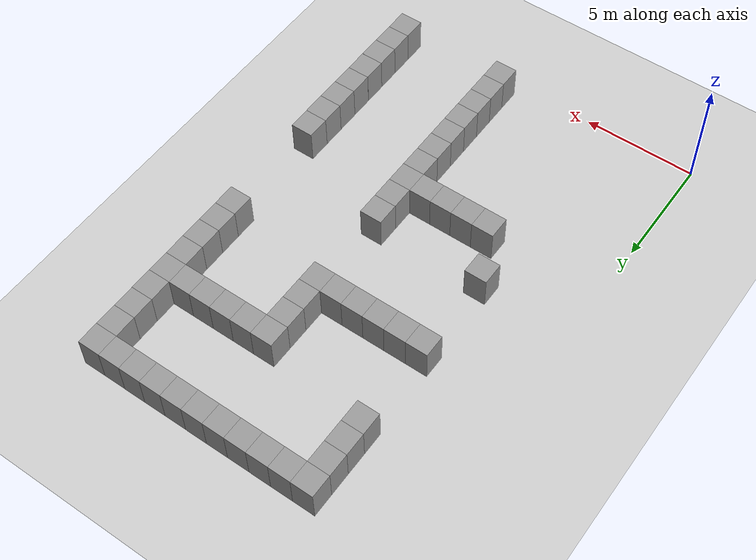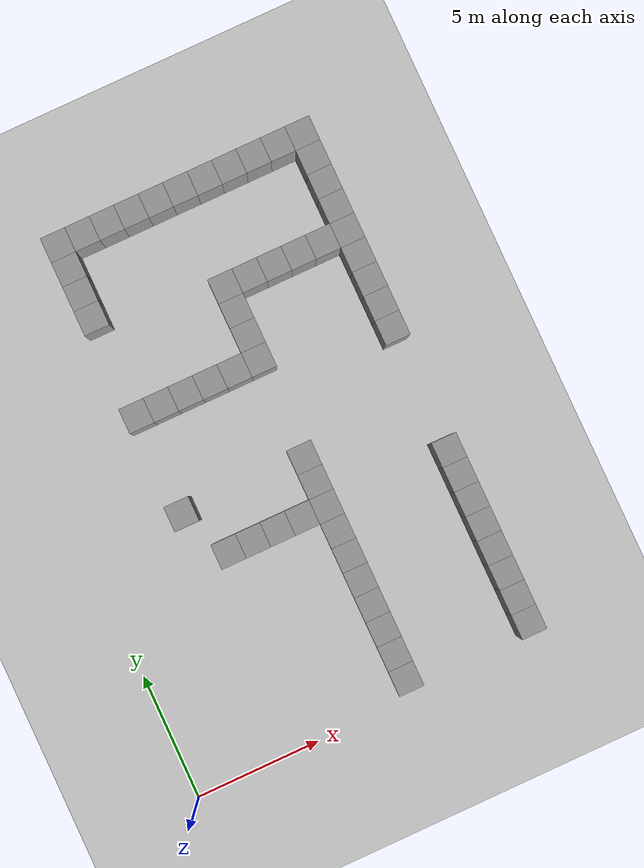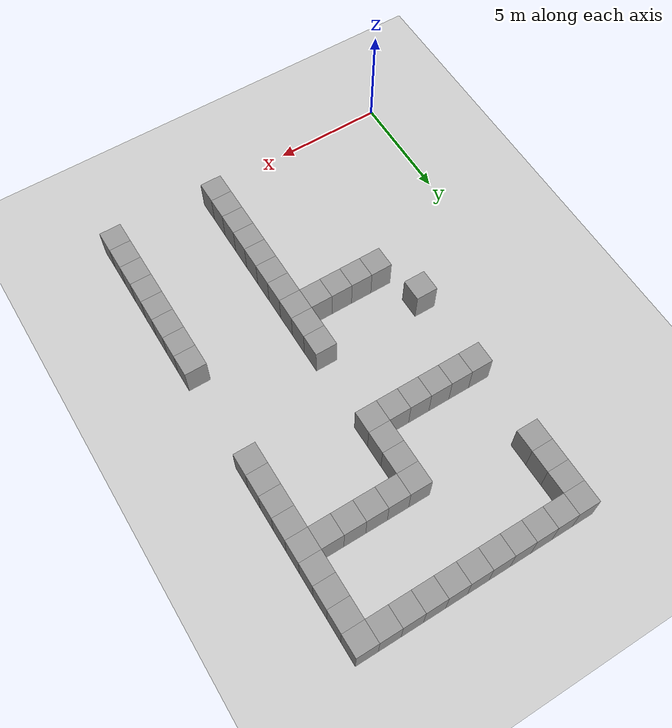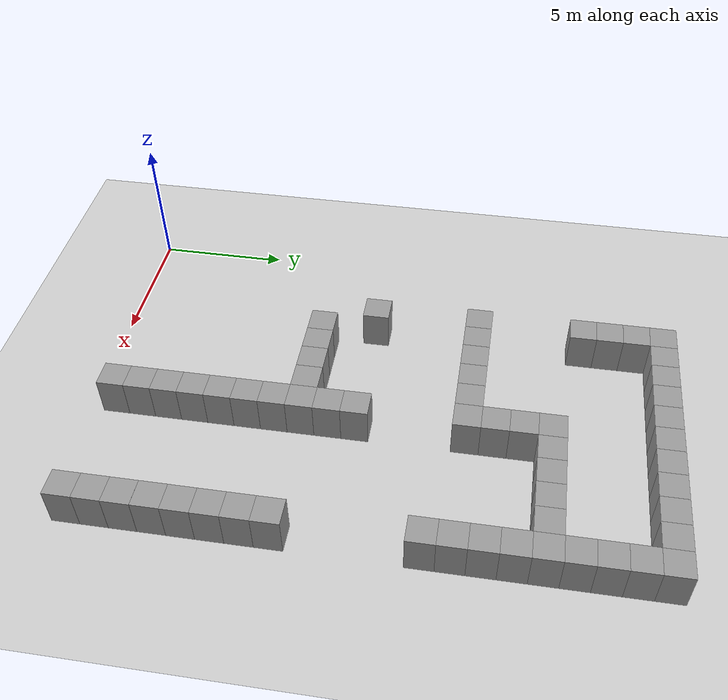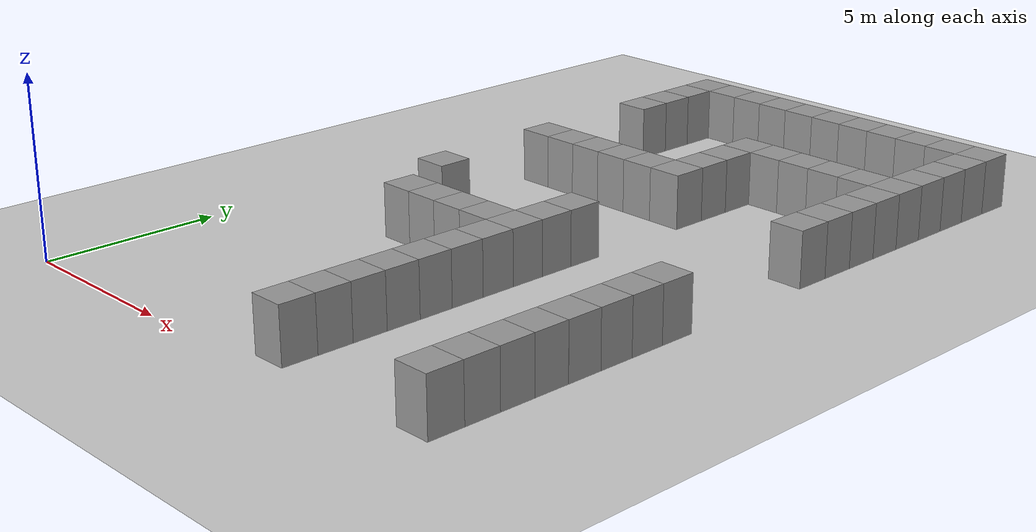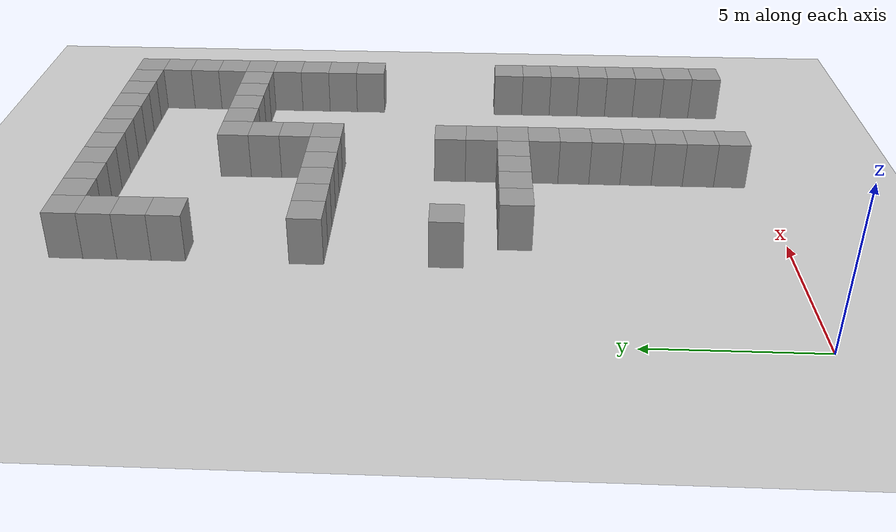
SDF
<sdf version="1.4">
 <world name="default">
  <model name="ground_plane">
   <static>1</static>
   <link name="link">
    <collision name="collision">
     <geometry><plane><normal>0 0 1</normal><size>100 100</size></plane></geometry>
     <surface><friction><ode><mu>100</mu><mu2>50</mu2></ode></friction></surface>
    </collision>
    <visual name="visual">
     <cast_shadows>0</cast_shadows>
     <geometry><plane><normal>0 0 1</normal><size>100 100</size></plane></geometry>
     <material>
      <script><uri>file://media/materials/scripts/gazebo.material</uri><name>Gazebo/Grey</name></script>
     </material>
    </visual>
    <velocity_decay><linear>0</linear><angular>0</angular></velocity_decay>
   </link>
  </model>
  <model name="unit_box_29">
   <pose>8.99995 0.999993 0.5 0 0 -1.1e-05</pose>
   <static>1</static>
   <link name="link">
    <inertial>
     <mass>1</mass>
     <inertia><ixx>1</ixx><ixy>0</ixy><ixz>0</ixz><iyy>1</iyy><iyz>0</iyz><izz>1</izz></inertia>
    </inertial>
    <collision name="collision"><geometry><box><size>1 1 2</size></box></geometry></collision>
    <visual name="visual">
     <geometry><box><size>1 1 2</size></box></geometry>
     <material>
      <script><uri>file://media/materials/scripts/gazebo.material</uri><name>Gazebo/Grey</name></script>
     </material>
    </visual>
    <velocity_decay><linear>0</linear><angular>0</angular></velocity_decay>
   </link>
   <static>0</static>
  </model>
  <model name="unit_box_30">
   <pose>8.99995 1.99999 0.5 0 0 -7e-06</pose>
   <static>1</static>
   <link name="link">
    <inertial>
     <mass>1</mass>
     <inertia><ixx>1</ixx><ixy>0</ixy><ixz>0</ixz><iyy>1</iyy><iyz>0</iyz><izz>1</izz></inertia>
    </inertial>
    <collision name="collision"><geometry><box><size>1 1 2</size></box></geometry></collision>
    <visual name="visual">
     <geometry><box><size>1 1 2</size></box></geometry>
     <material>
      <script><uri>file://media/materials/scripts/gazebo.material</uri><name>Gazebo/Grey</name></script>
     </material>
    </visual>
    <velocity_decay><linear>0</linear><angular>0</angular></velocity_decay>
   </link>
   <static>0</static>
  </model>
  <model name="unit_box_31">
   <pose>8.99997 3 0.5 0 0 -6e-06</pose>
   <static>1</static>
   <link name="link">
    <inertial>
     <mass>1</mass>
     <inertia><ixx>1</ixx><ixy>0</ixy><ixz>0</ixz><iyy>1</iyy><iyz>0</iyz><izz>1</izz></inertia>
    </inertial>
    <collision name="collision"><geometry><box><size>1 1 2</size></box></geometry></collision>
    <visual name="visual">
     <geometry><box><size>1 1 2</size></box></geometry>
     <material>
      <script><uri>file://media/materials/scripts/gazebo.material</uri><name>Gazebo/Grey</name></script>
     </material>
    </visual>
    <velocity_decay><linear>0</linear><angular>0</angular></velocity_decay>
   </link>
   <static>0</static>
  </model>
  <model name="unit_box_32">
   <pose>8.99997 4 0.5 0 0 -8e-06</pose>
   <static>1</static>
   <link name="link">
    <inertial>
     <mass>1</mass>
     <inertia><ixx>1</ixx><ixy>0</ixy><ixz>0</ixz><iyy>1</iyy><iyz>0</iyz><izz>1</izz></inertia>
    </inertial>
    <collision name="collision"><geometry><box><size>1 1 2</size></box></geometry></collision>
    <visual name="visual">
     <geometry><box><size>1 1 2</size></box></geometry>
     <material>
      <script><uri>file://media/materials/scripts/gazebo.material</uri><name>Gazebo/Grey</name></script>
     </material>
    </visual>
    <velocity_decay><linear>0</linear><angular>0</angular></velocity_decay>
   </link>
   <static>0</static>
  </model>
  <model name="unit_box_33">
   <pose>9 5 0.5 0 0 -7e-06</pose>
   <static>1</static>
   <link name="link">
    <inertial>
     <mass>1</mass>
     <inertia><ixx>1</ixx><ixy>0</ixy><ixz>0</ixz><iyy>1</iyy><iyz>0</iyz><izz>1</izz></inertia>
    </inertial>
    <collision name="collision"><geometry><box><size>1 1 2</size></box></geometry></collision>
    <visual name="visual">
     <geometry><box><size>1 1 2</size></box></geometry>
     <material>
      <script><uri>file://media/materials/scripts/gazebo.material</uri><name>Gazebo/Grey</name></script>
     </material>
    </visual>
    <velocity_decay><linear>0</linear><angular>0</angular></velocity_decay>
   </link>
   <static>0</static>
  </model>
  <model name="unit_box_34">
   <pose>9 6 0.5 0 0 -6e-06</pose>
   <static>1</static>
   <link name="link">
    <inertial>
     <mass>1</mass>
     <inertia><ixx>1</ixx><ixy>0</ixy><ixz>0</ixz><iyy>1</iyy><iyz>0</iyz><izz>1</izz></inertia>
    </inertial>
    <collision name="collision"><geometry><box><size>1 1 2</size></box></geometry></collision>
    <visual name="visual">
     <geometry><box><size>1 1 2</size></box></geometry>
     <material>
      <script><uri>file://media/materials/scripts/gazebo.material</uri><name>Gazebo/Grey</name></script>
     </material>
    </visual>
    <velocity_decay><linear>0</linear><angular>0</angular></velocity_decay>
   </link>
   <static>0</static>
  </model>
  <model name="unit_box_38">
   <pose>9.00001 7 0.5 0 0 -3e-06</pose>
   <static>1</static>
   <link name="link">
    <inertial>
     <mass>1</mass>
     <inertia><ixx>1</ixx><ixy>0</ixy><ixz>0</ixz><iyy>1</iyy><iyz>0</iyz><izz>1</izz></inertia>
    </inertial>
    <collision name="collision"><geometry><box><size>1 1 2</size></box></geometry></collision>
    <visual name="visual">
     <geometry><box><size>1 1 2</size></box></geometry>
     <material>
      <script><uri>file://media/materials/scripts/gazebo.material</uri><name>Gazebo/Grey</name></script>
     </material>
    </visual>
    <velocity_decay><linear>0</linear><angular>0</angular></velocity_decay>
   </link>
   <static>0</static>
  </model>
  <model name="unit_box_39">
   <pose>9 8.00001 0.5 0 0 -1e-06</pose>
   <static>1</static>
   <link name="link">
    <inertial>
     <mass>1</mass>
     <inertia><ixx>1</ixx><ixy>0</ixy><ixz>0</ixz><iyy>1</iyy><iyz>0</iyz><izz>1</izz></inertia>
    </inertial>
    <collision name="collision"><geometry><box><size>1 1 2</size></box></geometry></collision>
    <visual name="visual">
     <geometry><box><size>1 1 2</size></box></geometry>
     <material>
      <script><uri>file://media/materials/scripts/gazebo.material</uri><name>Gazebo/Grey</name></script>
     </material>
    </visual>
    <velocity_decay><linear>0</linear><angular>0</angular></velocity_decay>
   </link>
   <static>0</static>
  </model>
  <model name="unit_box_51">
   <pose>8 7.99999 0.5 0 -0 2e-06</pose>
   <static>1</static>
   <link name="link">
    <inertial>
     <mass>1</mass>
     <inertia><ixx>1</ixx><ixy>0</ixy><ixz>0</ixz><iyy>1</iyy><iyz>0</iyz><izz>1</izz></inertia>
    </inertial>
    <collision name="collision"><geometry><box><size>1 1 2</size></box></geometry></collision>
    <visual name="visual">
     <geometry><box><size>1 1 2</size></box></geometry>
     <material>
      <script><uri>file://media/materials/scripts/gazebo.material</uri><name>Gazebo/Grey</name></script>
     </material>
    </visual>
    <velocity_decay><linear>0</linear><angular>0</angular></velocity_decay>
   </link>
   <static>0</static>
  </model>
  <model name="unit_box_52">
   <pose>7 8.00001 0.5 0 -0 1e-06</pose>
   <static>1</static>
   <link name="link">
    <inertial>
     <mass>1</mass>
     <inertia><ixx>1</ixx><ixy>0</ixy><ixz>0</ixz><iyy>1</iyy><iyz>0</iyz><izz>1</izz></inertia>
    </inertial>
    <collision name="collision"><geometry><box><size>1 1 2</size></box></geometry></collision>
    <visual name="visual">
     <geometry><box><size>1 1 2</size></box></geometry>
     <material>
      <script><uri>file://media/materials/scripts/gazebo.material</uri><name>Gazebo/Grey</name></script>
     </material>
    </visual>
    <velocity_decay><linear>0</linear><angular>0</angular></velocity_decay>
   </link>
   <static>0</static>
  </model>
  <model name="unit_box_53">
   <pose>6 8 0.5 0 0 -3e-06</pose>
   <static>1</static>
   <link name="link">
    <inertial>
     <mass>1</mass>
     <inertia><ixx>1</ixx><ixy>0</ixy><ixz>0</ixz><iyy>1</iyy><iyz>0</iyz><izz>1</izz></inertia>
    </inertial>
    <collision name="collision"><geometry><box><size>1 1 2</size></box></geometry></collision>
    <visual name="visual">
     <geometry><box><size>1 1 2</size></box></geometry>
     <material>
      <script><uri>file://media/materials/scripts/gazebo.material</uri><name>Gazebo/Grey</name></script>
     </material>
    </visual>
    <velocity_decay><linear>0</linear><angular>0</angular></velocity_decay>
   </link>
   <static>0</static>
  </model>
  <model name="unit_box_54">
   <pose>5 8 0.5 0 0 -1e-06</pose>
   <static>1</static>
   <link name="link">
    <inertial>
     <mass>1</mass>
     <inertia><ixx>1</ixx><ixy>0</ixy><ixz>0</ixz><iyy>1</iyy><iyz>0</iyz><izz>1</izz></inertia>
    </inertial>
    <collision name="collision"><geometry><box><size>1 1 2</size></box></geometry></collision>
    <visual name="visual">
     <geometry><box><size>1 1 2</size></box></geometry>
     <material>
      <script><uri>file://media/materials/scripts/gazebo.material</uri><name>Gazebo/Grey</name></script>
     </material>
    </visual>
    <velocity_decay><linear>0</linear><angular>0</angular></velocity_decay>
   </link>
   <static>0</static>
  </model>
  <model name="unit_box_55">
   <pose>9 9.00001 0.5 0 0 -1e-06</pose>
   <static>1</static>
   <link name="link">
    <inertial>
     <mass>1</mass>
     <inertia><ixx>1</ixx><ixy>0</ixy><ixz>0</ixz><iyy>1</iyy><iyz>0</iyz><izz>1</izz></inertia>
    </inertial>
    <collision name="collision"><geometry><box><size>1 1 2</size></box></geometry></collision>
    <visual name="visual">
     <geometry><box><size>1 1 2</size></box></geometry>
     <material>
      <script><uri>file://media/materials/scripts/gazebo.material</uri><name>Gazebo/Grey</name></script>
     </material>
    </visual>
    <velocity_decay><linear>0</linear><angular>0</angular></velocity_decay>
   </link>
   <static>0</static>
  </model>
  <model name="unit_box_56">
   <pose>9 10 0.5 0 0 -2e-06</pose>
   <static>1</static>
   <link name="link">
    <inertial>
     <mass>1</mass>
     <inertia><ixx>1</ixx><ixy>0</ixy><ixz>0</ixz><iyy>1</iyy><iyz>0</iyz><izz>1</izz></inertia>
    </inertial>
    <collision name="collision"><geometry><box><size>1 1 2</size></box></geometry></collision>
    <visual name="visual">
     <geometry><box><size>1 1 2</size></box></geometry>
     <material>
      <script><uri>file://media/materials/scripts/gazebo.material</uri><name>Gazebo/Grey</name></script>
     </material>
    </visual>
    <velocity_decay><linear>0</linear><angular>0</angular></velocity_decay>
   </link>
   <static>0</static>
  </model>
  <model name="unit_box_65">
   <pose>4 14 0.5 0 -0 0</pose>
   <static>1</static>
   <link name="link">
    <inertial>
     <mass>1</mass>
     <inertia><ixx>1</ixx><ixy>0</ixy><ixz>0</ixz><iyy>1</iyy><iyz>0</iyz><izz>1</izz></inertia>
    </inertial>
    <collision name="collision"><geometry><box><size>1 1 2</size></box></geometry></collision>
    <visual name="visual">
     <geometry><box><size>1 1 2</size></box></geometry>
     <material>
      <script><uri>file://media/materials/scripts/gazebo.material</uri><name>Gazebo/Grey</name></script>
     </material>
    </visual>
    <velocity_decay><linear>0</linear><angular>0</angular></velocity_decay>
   </link>
   <static>0</static>
  </model>
  <model name="unit_box_66">
   <pose>5 14 0.5 0 -0 0</pose>
   <static>1</static>
   <link name="link">
    <inertial>
     <mass>1</mass>
     <inertia><ixx>1</ixx><ixy>0</ixy><ixz>0</ixz><iyy>1</iyy><iyz>0</iyz><izz>1</izz></inertia>
    </inertial>
    <collision name="collision"><geometry><box><size>1 1 2</size></box></geometry></collision>
    <visual name="visual">
     <geometry><box><size>1 1 2</size></box></geometry>
     <material>
      <script><uri>file://media/materials/scripts/gazebo.material</uri><name>Gazebo/Grey</name></script>
     </material>
    </visual>
    <velocity_decay><linear>0</linear><angular>0</angular></velocity_decay>
   </link>
   <static>0</static>
  </model>
  <model name="unit_box_86">
   <pose>6 14 0.5 0 -0 1e-06</pose>
   <static>1</static>
   <link name="link">
    <inertial>
     <mass>1</mass>
     <inertia><ixx>1</ixx><ixy>0</ixy><ixz>0</ixz><iyy>1</iyy><iyz>0</iyz><izz>1</izz></inertia>
    </inertial>
    <collision name="collision"><geometry><box><size>1 1 2</size></box></geometry></collision>
    <visual name="visual">
     <geometry><box><size>1 1 2</size></box></geometry>
     <material>
      <script><uri>file://media/materials/scripts/gazebo.material</uri><name>Gazebo/Grey</name></script>
     </material>
    </visual>
    <velocity_decay><linear>0</linear><angular>0</angular></velocity_decay>
   </link>
   <static>0</static>
  </model>
  <model name="unit_box_87">
   <pose>7 14 0.5 0 -0 1e-06</pose>
   <static>1</static>
   <link name="link">
    <inertial>
     <mass>1</mass>
     <inertia><ixx>1</ixx><ixy>0</ixy><ixz>0</ixz><iyy>1</iyy><iyz>0</iyz><izz>1</izz></inertia>
    </inertial>
    <collision name="collision"><geometry><box><size>1 1 2</size></box></geometry></collision>
    <visual name="visual">
     <geometry><box><size>1 1 2</size></box></geometry>
     <material>
      <script><uri>file://media/materials/scripts/gazebo.material</uri><name>Gazebo/Grey</name></script>
     </material>
    </visual>
    <velocity_decay><linear>0</linear><angular>0</angular></velocity_decay>
   </link>
   <static>0</static>
  </model>
  <model name="unit_box_88">
   <pose>8 14 0.5 0 -0 0</pose>
   <static>1</static>
   <link name="link">
    <inertial>
     <mass>1</mass>
     <inertia><ixx>1</ixx><ixy>0</ixy><ixz>0</ixz><iyy>1</iyy><iyz>0</iyz><izz>1</izz></inertia>
    </inertial>
    <collision name="collision"><geometry><box><size>1 1 2</size></box></geometry></collision>
    <visual name="visual">
     <geometry><box><size>1 1 2</size></box></geometry>
     <material>
      <script><uri>file://media/materials/scripts/gazebo.material</uri><name>Gazebo/Grey</name></script>
     </material>
    </visual>
    <velocity_decay><linear>0</linear><angular>0</angular></velocity_decay>
   </link>
   <static>0</static>
  </model>
  <model name="unit_box_89">
   <pose>9 14 0.5 0 -0 0</pose>
   <static>1</static>
   <link name="link">
    <inertial>
     <mass>1</mass>
     <inertia><ixx>1</ixx><ixy>0</ixy><ixz>0</ixz><iyy>1</iyy><iyz>0</iyz><izz>1</izz></inertia>
    </inertial>
    <collision name="collision"><geometry><box><size>1 1 2</size></box></geometry></collision>
    <visual name="visual">
     <geometry><box><size>1 1 2</size></box></geometry>
     <material>
      <script><uri>file://media/materials/scripts/gazebo.material</uri><name>Gazebo/Grey</name></script>
     </material>
    </visual>
    <velocity_decay><linear>0</linear><angular>0</angular></velocity_decay>
   </link>
   <static>0</static>
  </model>
  <model name="unit_box_92">
   <pose>4 10 0.5 0 -0 1e-06</pose>
   <static>1</static>
   <link name="link">
    <inertial>
     <mass>1</mass>
     <inertia><ixx>1</ixx><ixy>0</ixy><ixz>0</ixz><iyy>1</iyy><iyz>0</iyz><izz>1</izz></inertia>
    </inertial>
    <collision name="collision"><geometry><box><size>1 1 2</size></box></geometry></collision>
    <visual name="visual">
     <geometry><box><size>1 1 2</size></box></geometry>
     <material>
      <script><uri>file://media/materials/scripts/gazebo.material</uri><name>Gazebo/Grey</name></script>
     </material>
    </visual>
    <velocity_decay><linear>0</linear><angular>0</angular></velocity_decay>
   </link>
   <static>0</static>
  </model>
  <model name="unit_box_93">
   <pose>9.00001 15 0.5 0 0 -4e-06</pose>
   <static>1</static>
   <link name="link">
    <inertial>
     <mass>1</mass>
     <inertia><ixx>1</ixx><ixy>0</ixy><ixz>0</ixz><iyy>1</iyy><iyz>0</iyz><izz>1</izz></inertia>
    </inertial>
    <collision name="collision"><geometry><box><size>1 1 2</size></box></geometry></collision>
    <visual name="visual">
     <geometry><box><size>1 1 2</size></box></geometry>
     <material>
      <script><uri>file://media/materials/scripts/gazebo.material</uri><name>Gazebo/Grey</name></script>
     </material>
    </visual>
    <velocity_decay><linear>0</linear><angular>0</angular></velocity_decay>
   </link>
   <static>0</static>
  </model>
  <model name="unit_box_94">
   <pose>9 16 0.5 0 0 -4e-06</pose>
   <static>1</static>
   <link name="link">
    <inertial>
     <mass>1</mass>
     <inertia><ixx>1</ixx><ixy>0</ixy><ixz>0</ixz><iyy>1</iyy><iyz>0</iyz><izz>1</izz></inertia>
    </inertial>
    <collision name="collision"><geometry><box><size>1 1 2</size></box></geometry></collision>
    <visual name="visual">
     <geometry><box><size>1 1 2</size></box></geometry>
     <material>
      <script><uri>file://media/materials/scripts/gazebo.material</uri><name>Gazebo/Grey</name></script>
     </material>
    </visual>
    <velocity_decay><linear>0</linear><angular>0</angular></velocity_decay>
   </link>
   <static>0</static>
  </model>
  <model name="unit_box_95">
   <pose>9 17 0.5 0 0 -3e-06</pose>
   <static>1</static>
   <link name="link">
    <inertial>
     <mass>1</mass>
     <inertia><ixx>1</ixx><ixy>0</ixy><ixz>0</ixz><iyy>1</iyy><iyz>0</iyz><izz>1</izz></inertia>
    </inertial>
    <collision name="collision"><geometry><box><size>1 1 2</size></box></geometry></collision>
    <visual name="visual">
     <geometry><box><size>1 1 2</size></box></geometry>
     <material>
      <script><uri>file://media/materials/scripts/gazebo.material</uri><name>Gazebo/Grey</name></script>
     </material>
    </visual>
    <velocity_decay><linear>0</linear><angular>0</angular></velocity_decay>
   </link>
   <static>0</static>
  </model>
  <model name="unit_box_107">
   <pose>3.99999 21 0.5 0 -0 2e-06</pose>
   <static>1</static>
   <link name="link">
    <inertial>
     <mass>1</mass>
     <inertia><ixx>1</ixx><ixy>0</ixy><ixz>0</ixz><iyy>1</iyy><iyz>0</iyz><izz>1</izz></inertia>
    </inertial>
    <collision name="collision"><geometry><box><size>1 1 2</size></box></geometry></collision>
    <visual name="visual">
     <geometry><box><size>1 1 2</size></box></geometry>
     <material>
      <script><uri>file://media/materials/scripts/gazebo.material</uri><name>Gazebo/Grey</name></script>
     </material>
    </visual>
    <velocity_decay><linear>0</linear><angular>0</angular></velocity_decay>
   </link>
   <static>0</static>
  </model>
  <model name="unit_box_108">
   <pose>5 21 0.5 0 -0 3e-06</pose>
   <static>1</static>
   <link name="link">
    <inertial>
     <mass>1</mass>
     <inertia><ixx>1</ixx><ixy>0</ixy><ixz>0</ixz><iyy>1</iyy><iyz>0</iyz><izz>1</izz></inertia>
    </inertial>
    <collision name="collision"><geometry><box><size>1 1 2</size></box></geometry></collision>
    <visual name="visual">
     <geometry><box><size>1 1 2</size></box></geometry>
     <material>
      <script><uri>file://media/materials/scripts/gazebo.material</uri><name>Gazebo/Grey</name></script>
     </material>
    </visual>
    <velocity_decay><linear>0</linear><angular>0</angular></velocity_decay>
   </link>
   <static>0</static>
  </model>
  <model name="unit_box_109">
   <pose>6 20.9999 0.5 0 -0 3e-06</pose>
   <static>1</static>
   <link name="link">
    <inertial>
     <mass>1</mass>
     <inertia><ixx>1</ixx><ixy>0</ixy><ixz>0</ixz><iyy>1</iyy><iyz>0</iyz><izz>1</izz></inertia>
    </inertial>
    <collision name="collision"><geometry><box><size>1 1 2</size></box></geometry></collision>
    <visual name="visual">
     <geometry><box><size>1 1 2</size></box></geometry>
     <material>
      <script><uri>file://media/materials/scripts/gazebo.material</uri><name>Gazebo/Grey</name></script>
     </material>
    </visual>
    <velocity_decay><linear>0</linear><angular>0</angular></velocity_decay>
   </link>
   <static>0</static>
  </model>
  <model name="unit_box_110">
   <pose>7 21 0.5 0 -0 4e-06</pose>
   <static>1</static>
   <link name="link">
    <inertial>
     <mass>1</mass>
     <inertia><ixx>1</ixx><ixy>0</ixy><ixz>0</ixz><iyy>1</iyy><iyz>0</iyz><izz>1</izz></inertia>
    </inertial>
    <collision name="collision"><geometry><box><size>1 1 2</size></box></geometry></collision>
    <visual name="visual">
     <geometry><box><size>1 1 2</size></box></geometry>
     <material>
      <script><uri>file://media/materials/scripts/gazebo.material</uri><name>Gazebo/Grey</name></script>
     </material>
    </visual>
    <velocity_decay><linear>0</linear><angular>0</angular></velocity_decay>
   </link>
   <static>0</static>
  </model>
  <model name="unit_box_111">
   <pose>8 21 0.5 0 -0 3e-06</pose>
   <static>1</static>
   <link name="link">
    <inertial>
     <mass>1</mass>
     <inertia><ixx>1</ixx><ixy>0</ixy><ixz>0</ixz><iyy>1</iyy><iyz>0</iyz><izz>1</izz></inertia>
    </inertial>
    <collision name="collision"><geometry><box><size>1 1 2</size></box></geometry></collision>
    <visual name="visual">
     <geometry><box><size>1 1 2</size></box></geometry>
     <material>
      <script><uri>file://media/materials/scripts/gazebo.material</uri><name>Gazebo/Grey</name></script>
     </material>
    </visual>
    <velocity_decay><linear>0</linear><angular>0</angular></velocity_decay>
   </link>
   <static>0</static>
  </model>
  <model name="unit_box_112">
   <pose>9 21 0.5 0 -0 3e-06</pose>
   <static>1</static>
   <link name="link">
    <inertial>
     <mass>1</mass>
     <inertia><ixx>1</ixx><ixy>0</ixy><ixz>0</ixz><iyy>1</iyy><iyz>0</iyz><izz>1</izz></inertia>
    </inertial>
    <collision name="collision"><geometry><box><size>1 1 2</size></box></geometry></collision>
    <visual name="visual">
     <geometry><box><size>1 1 2</size></box></geometry>
     <material>
      <script><uri>file://media/materials/scripts/gazebo.material</uri><name>Gazebo/Grey</name></script>
     </material>
    </visual>
    <velocity_decay><linear>0</linear><angular>0</angular></velocity_decay>
   </link>
   <static>0</static>
  </model>
  <model name="unit_box_113">
   <pose>10 21 0.5 0 -0 1e-06</pose>
   <static>1</static>
   <link name="link">
    <inertial>
     <mass>1</mass>
     <inertia><ixx>1</ixx><ixy>0</ixy><ixz>0</ixz><iyy>1</iyy><iyz>0</iyz><izz>1</izz></inertia>
    </inertial>
    <collision name="collision"><geometry><box><size>1 1 2</size></box></geometry></collision>
    <visual name="visual">
     <geometry><box><size>1 1 2</size></box></geometry>
     <material>
      <script><uri>file://media/materials/scripts/gazebo.material</uri><name>Gazebo/Grey</name></script>
     </material>
    </visual>
    <velocity_decay><linear>0</linear><angular>0</angular></velocity_decay>
   </link>
   <static>0</static>
  </model>
  <model name="unit_box_114">
   <pose>11 21 0.5 0 -0 1e-06</pose>
   <static>1</static>
   <link name="link">
    <inertial>
     <mass>1</mass>
     <inertia><ixx>1</ixx><ixy>0</ixy><ixz>0</ixz><iyy>1</iyy><iyz>0</iyz><izz>1</izz></inertia>
    </inertial>
    <collision name="collision"><geometry><box><size>1 1 2</size></box></geometry></collision>
    <visual name="visual">
     <geometry><box><size>1 1 2</size></box></geometry>
     <material>
      <script><uri>file://media/materials/scripts/gazebo.material</uri><name>Gazebo/Grey</name></script>
     </material>
    </visual>
    <velocity_decay><linear>0</linear><angular>0</angular></velocity_decay>
   </link>
   <static>0</static>
  </model>
  <model name="unit_box_115">
   <pose>12 21 0.5 0 0 -2e-06</pose>
   <static>1</static>
   <link name="link">
    <inertial>
     <mass>1</mass>
     <inertia><ixx>1</ixx><ixy>0</ixy><ixz>0</ixz><iyy>1</iyy><iyz>0</iyz><izz>1</izz></inertia>
    </inertial>
    <collision name="collision"><geometry><box><size>1 1 2</size></box></geometry></collision>
    <visual name="visual">
     <geometry><box><size>1 1 2</size></box></geometry>
     <material>
      <script><uri>file://media/materials/scripts/gazebo.material</uri><name>Gazebo/Grey</name></script>
     </material>
    </visual>
    <velocity_decay><linear>0</linear><angular>0</angular></velocity_decay>
   </link>
   <static>0</static>
  </model>
  <model name="unit_box_116">
   <pose>13 21 0.5 0 0 -2e-06</pose>
   <static>1</static>
   <link name="link">
    <inertial>
     <mass>1</mass>
     <inertia><ixx>1</ixx><ixy>0</ixy><ixz>0</ixz><iyy>1</iyy><iyz>0</iyz><izz>1</izz></inertia>
    </inertial>
    <collision name="collision"><geometry><box><size>1 1 2</size></box></geometry></collision>
    <visual name="visual">
     <geometry><box><size>1 1 2</size></box></geometry>
     <material>
      <script><uri>file://media/materials/scripts/gazebo.material</uri><name>Gazebo/Grey</name></script>
     </material>
    </visual>
    <velocity_decay><linear>0</linear><angular>0</angular></velocity_decay>
   </link>
   <static>0</static>
  </model>
  <model name="unit_box_117">
   <pose>10 17 0.5 0 0 -2e-06</pose>
   <static>1</static>
   <link name="link">
    <inertial>
     <mass>1</mass>
     <inertia><ixx>1</ixx><ixy>0</ixy><ixz>0</ixz><iyy>1</iyy><iyz>0</iyz><izz>1</izz></inertia>
    </inertial>
    <collision name="collision"><geometry><box><size>1 1 2</size></box></geometry></collision>
    <visual name="visual">
     <geometry><box><size>1 1 2</size></box></geometry>
     <material>
      <script><uri>file://media/materials/scripts/gazebo.material</uri><name>Gazebo/Grey</name></script>
     </material>
    </visual>
    <velocity_decay><linear>0</linear><angular>0</angular></velocity_decay>
   </link>
   <static>0</static>
  </model>
  <model name="unit_box_118">
   <pose>11 17 0.5 0 0 -1e-06</pose>
   <static>1</static>
   <link name="link">
    <inertial>
     <mass>1</mass>
     <inertia><ixx>1</ixx><ixy>0</ixy><ixz>0</ixz><iyy>1</iyy><iyz>0</iyz><izz>1</izz></inertia>
    </inertial>
    <collision name="collision"><geometry><box><size>1 1 2</size></box></geometry></collision>
    <visual name="visual">
     <geometry><box><size>1 1 2</size></box></geometry>
     <material>
      <script><uri>file://media/materials/scripts/gazebo.material</uri><name>Gazebo/Grey</name></script>
     </material>
    </visual>
    <velocity_decay><linear>0</linear><angular>0</angular></velocity_decay>
   </link>
   <static>0</static>
  </model>
  <model name="unit_box_119">
   <pose>12 17 0.5 0 0 -2e-06</pose>
   <static>1</static>
   <link name="link">
    <inertial>
     <mass>1</mass>
     <inertia><ixx>1</ixx><ixy>0</ixy><ixz>0</ixz><iyy>1</iyy><iyz>0</iyz><izz>1</izz></inertia>
    </inertial>
    <collision name="collision"><geometry><box><size>1 1 2</size></box></geometry></collision>
    <visual name="visual">
     <geometry><box><size>1 1 2</size></box></geometry>
     <material>
      <script><uri>file://media/materials/scripts/gazebo.material</uri><name>Gazebo/Grey</name></script>
     </material>
    </visual>
    <velocity_decay><linear>0</linear><angular>0</angular></velocity_decay>
   </link>
   <static>0</static>
  </model>
  <model name="unit_box_120">
   <pose>13 17 0.5 0 0 -2e-06</pose>
   <static>1</static>
   <link name="link">
    <inertial>
     <mass>1</mass>
     <inertia><ixx>1</ixx><ixy>0</ixy><ixz>0</ixz><iyy>1</iyy><iyz>0</iyz><izz>1</izz></inertia>
    </inertial>
    <collision name="collision"><geometry><box><size>1 1 2</size></box></geometry></collision>
    <visual name="visual">
     <geometry><box><size>1 1 2</size></box></geometry>
     <material>
      <script><uri>file://media/materials/scripts/gazebo.material</uri><name>Gazebo/Grey</name></script>
     </material>
    </visual>
    <velocity_decay><linear>0</linear><angular>0</angular></velocity_decay>
   </link>
   <static>0</static>
  </model>
  <model name="unit_box_121">
   <pose>14 21 0.5 0 0 -2e-06</pose>
   <static>1</static>
   <link name="link">
    <inertial>
     <mass>1</mass>
     <inertia><ixx>1</ixx><ixy>0</ixy><ixz>0</ixz><iyy>1</iyy><iyz>0</iyz><izz>1</izz></inertia>
    </inertial>
    <collision name="collision"><geometry><box><size>1 1 2</size></box></geometry></collision>
    <visual name="visual">
     <geometry><box><size>1 1 2</size></box></geometry>
     <material>
      <script><uri>file://media/materials/scripts/gazebo.material</uri><name>Gazebo/Grey</name></script>
     </material>
    </visual>
    <velocity_decay><linear>0</linear><angular>0</angular></velocity_decay>
   </link>
   <static>0</static>
  </model>
  <model name="unit_box_122">
   <pose>14 20 0.5 0 0 -4e-06</pose>
   <static>1</static>
   <link name="link">
    <inertial>
     <mass>1</mass>
     <inertia><ixx>1</ixx><ixy>0</ixy><ixz>0</ixz><iyy>1</iyy><iyz>0</iyz><izz>1</izz></inertia>
    </inertial>
    <collision name="collision"><geometry><box><size>1 1 2</size></box></geometry></collision>
    <visual name="visual">
     <geometry><box><size>1 1 2</size></box></geometry>
     <material>
      <script><uri>file://media/materials/scripts/gazebo.material</uri><name>Gazebo/Grey</name></script>
     </material>
    </visual>
    <velocity_decay><linear>0</linear><angular>0</angular></velocity_decay>
   </link>
   <static>0</static>
  </model>
  <model name="unit_box_123">
   <pose>14 19 0.5 0 0 -4e-06</pose>
   <static>1</static>
   <link name="link">
    <inertial>
     <mass>1</mass>
     <inertia><ixx>1</ixx><ixy>0</ixy><ixz>0</ixz><iyy>1</iyy><iyz>0</iyz><izz>1</izz></inertia>
    </inertial>
    <collision name="collision"><geometry><box><size>1 1 2</size></box></geometry></collision>
    <visual name="visual">
     <geometry><box><size>1 1 2</size></box></geometry>
     <material>
      <script><uri>file://media/materials/scripts/gazebo.material</uri><name>Gazebo/Grey</name></script>
     </material>
    </visual>
    <velocity_decay><linear>0</linear><angular>0</angular></velocity_decay>
   </link>
   <static>0</static>
  </model>
  <model name="unit_box_124">
   <pose>14 18 0.5 0 0 -4e-06</pose>
   <static>1</static>
   <link name="link">
    <inertial>
     <mass>1</mass>
     <inertia><ixx>1</ixx><ixy>0</ixy><ixz>0</ixz><iyy>1</iyy><iyz>0</iyz><izz>1</izz></inertia>
    </inertial>
    <collision name="collision"><geometry><box><size>1 1 2</size></box></geometry></collision>
    <visual name="visual">
     <geometry><box><size>1 1 2</size></box></geometry>
     <material>
      <script><uri>file://media/materials/scripts/gazebo.material</uri><name>Gazebo/Grey</name></script>
     </material>
    </visual>
    <velocity_decay><linear>0</linear><angular>0</angular></velocity_decay>
   </link>
   <static>0</static>
  </model>
  <model name="unit_box_125">
   <pose>14 17 0.5 0 -0 1e-06</pose>
   <static>1</static>
   <link name="link">
    <inertial>
     <mass>1</mass>
     <inertia><ixx>1</ixx><ixy>0</ixy><ixz>0</ixz><iyy>1</iyy><iyz>0</iyz><izz>1</izz></inertia>
    </inertial>
    <collision name="collision"><geometry><box><size>1 1 2</size></box></geometry></collision>
    <visual name="visual">
     <geometry><box><size>1 1 2</size></box></geometry>
     <material>
      <script><uri>file://media/materials/scripts/gazebo.material</uri><name>Gazebo/Grey</name></script>
     </material>
    </visual>
    <velocity_decay><linear>0</linear><angular>0</angular></velocity_decay>
   </link>
   <static>0</static>
  </model>
  <model name="unit_box_126">
   <pose>4 20 0.5 0 -0 3e-06</pose>
   <static>1</static>
   <link name="link">
    <inertial>
     <mass>1</mass>
     <inertia><ixx>1</ixx><ixy>0</ixy><ixz>0</ixz><iyy>1</iyy><iyz>0</iyz><izz>1</izz></inertia>
    </inertial>
    <collision name="collision"><geometry><box><size>1 1 2</size></box></geometry></collision>
    <visual name="visual">
     <geometry><box><size>1 1 2</size></box></geometry>
     <material>
      <script><uri>file://media/materials/scripts/gazebo.material</uri><name>Gazebo/Grey</name></script>
     </material>
    </visual>
    <velocity_decay><linear>0</linear><angular>0</angular></velocity_decay>
   </link>
   <static>0</static>
  </model>
  <model name="unit_box_127">
   <pose>4 19 0.5 0 -0 3e-06</pose>
   <static>1</static>
   <link name="link">
    <inertial>
     <mass>1</mass>
     <inertia><ixx>1</ixx><ixy>0</ixy><ixz>0</ixz><iyy>1</iyy><iyz>0</iyz><izz>1</izz></inertia>
    </inertial>
    <collision name="collision"><geometry><box><size>1 1 2</size></box></geometry></collision>
    <visual name="visual">
     <geometry><box><size>1 1 2</size></box></geometry>
     <material>
      <script><uri>file://media/materials/scripts/gazebo.material</uri><name>Gazebo/Grey</name></script>
     </material>
    </visual>
    <velocity_decay><linear>0</linear><angular>0</angular></velocity_decay>
   </link>
   <static>0</static>
  </model>
  <model name="unit_box_128">
   <pose>4 18 0.5 0 -0 1e-06</pose>
   <static>1</static>
   <link name="link">
    <inertial>
     <mass>1</mass>
     <inertia><ixx>1</ixx><ixy>0</ixy><ixz>0</ixz><iyy>1</iyy><iyz>0</iyz><izz>1</izz></inertia>
    </inertial>
    <collision name="collision"><geometry><box><size>1 1 2</size></box></geometry></collision>
    <visual name="visual">
     <geometry><box><size>1 1 2</size></box></geometry>
     <material>
      <script><uri>file://media/materials/scripts/gazebo.material</uri><name>Gazebo/Grey</name></script>
     </material>
    </visual>
    <velocity_decay><linear>0</linear><angular>0</angular></velocity_decay>
   </link>
   <static>0</static>
  </model>
  <model name="unit_box_130">
   <pose>14 16 0.5 0 -0 2e-06</pose>
   <static>1</static>
   <link name="link">
    <inertial>
     <mass>1</mass>
     <inertia><ixx>1</ixx><ixy>0</ixy><ixz>0</ixz><iyy>1</iyy><iyz>0</iyz><izz>1</izz></inertia>
    </inertial>
    <collision name="collision"><geometry><box><size>1 1 2</size></box></geometry></collision>
    <visual name="visual">
     <geometry><box><size>1 1 2</size></box></geometry>
     <material>
      <script><uri>file://media/materials/scripts/gazebo.material</uri><name>Gazebo/Grey</name></script>
     </material>
    </visual>
    <velocity_decay><linear>0</linear><angular>0</angular></velocity_decay>
   </link>
   <static>0</static>
  </model>
  <model name="unit_box_131">
   <pose>14 15 0.5 0 -0 1e-06</pose>
   <static>1</static>
   <link name="link">
    <inertial>
     <mass>1</mass>
     <inertia><ixx>1</ixx><ixy>0</ixy><ixz>0</ixz><iyy>1</iyy><iyz>0</iyz><izz>1</izz></inertia>
    </inertial>
    <collision name="collision"><geometry><box><size>1 1 2</size></box></geometry></collision>
    <visual name="visual">
     <geometry><box><size>1 1 2</size></box></geometry>
     <material>
      <script><uri>file://media/materials/scripts/gazebo.material</uri><name>Gazebo/Grey</name></script>
     </material>
    </visual>
    <velocity_decay><linear>0</linear><angular>0</angular></velocity_decay>
   </link>
   <static>0</static>
  </model>
  <model name="unit_box_132">
   <pose>14 14 0.5 0 -0 1e-06</pose>
   <static>1</static>
   <link name="link">
    <inertial>
     <mass>1</mass>
     <inertia><ixx>1</ixx><ixy>0</ixy><ixz>0</ixz><iyy>1</iyy><iyz>0</iyz><izz>1</izz></inertia>
    </inertial>
    <collision name="collision"><geometry><box><size>1 1 2</size></box></geometry></collision>
    <visual name="visual">
     <geometry><box><size>1 1 2</size></box></geometry>
     <material>
      <script><uri>file://media/materials/scripts/gazebo.material</uri><name>Gazebo/Grey</name></script>
     </material>
    </visual>
    <velocity_decay><linear>0</linear><angular>0</angular></velocity_decay>
   </link>
   <static>0</static>
  </model>
  <model name="unit_box_133">
   <pose>14 13 0.5 0 -0 1e-06</pose>
   <static>1</static>
   <link name="link">
    <inertial>
     <mass>1</mass>
     <inertia><ixx>1</ixx><ixy>0</ixy><ixz>0</ixz><iyy>1</iyy><iyz>0</iyz><izz>1</izz></inertia>
    </inertial>
    <collision name="collision"><geometry><box><size>1 1 2</size></box></geometry></collision>
    <visual name="visual">
     <geometry><box><size>1 1 2</size></box></geometry>
     <material>
      <script><uri>file://media/materials/scripts/gazebo.material</uri><name>Gazebo/Grey</name></script>
     </material>
    </visual>
    <velocity_decay><linear>0</linear><angular>0</angular></velocity_decay>
   </link>
   <static>0</static>
  </model>
  <model name="unit_box_169">
   <pose>14 8.00027 0.5 0 0 -7.2e-05</pose>
   <static>1</static>
   <link name="link">
    <inertial>
     <mass>1</mass>
     <inertia><ixx>1</ixx><ixy>0</ixy><ixz>0</ixz><iyy>1</iyy><iyz>0</iyz><izz>1</izz></inertia>
    </inertial>
    <collision name="collision"><geometry><box><size>1 1 2</size></box></geometry></collision>
    <visual name="visual">
     <geometry><box><size>1 1 2</size></box></geometry>
     <material>
      <script><uri>file://media/materials/scripts/gazebo.material</uri><name>Gazebo/Grey</name></script>
     </material>
    </visual>
    <velocity_decay><linear>0</linear><angular>0</angular></velocity_decay>
   </link>
   <static>0</static>
  </model>
  <model name="unit_box_170">
   <pose>14 7.00026 0.5 0 0 -7.2e-05</pose>
   <static>1</static>
   <link name="link">
    <inertial>
     <mass>1</mass>
     <inertia><ixx>1</ixx><ixy>0</ixy><ixz>0</ixz><iyy>1</iyy><iyz>0</iyz><izz>1</izz></inertia>
    </inertial>
    <collision name="collision"><geometry><box><size>1 1 2</size></box></geometry></collision>
    <visual name="visual">
     <geometry><box><size>1 1 2</size></box></geometry>
     <material>
      <script><uri>file://media/materials/scripts/gazebo.material</uri><name>Gazebo/Grey</name></script>
     </material>
    </visual>
    <velocity_decay><linear>0</linear><angular>0</angular></velocity_decay>
   </link>
   <static>0</static>
  </model>
  <model name="unit_box_171">
   <pose>13.9998 6.00025 0.5 0 0 -8.2e-05</pose>
   <static>1</static>
   <link name="link">
    <inertial>
     <mass>1</mass>
     <inertia><ixx>1</ixx><ixy>0</ixy><ixz>0</ixz><iyy>1</iyy><iyz>0</iyz><izz>1</izz></inertia>
    </inertial>
    <collision name="collision"><geometry><box><size>1 1 2</size></box></geometry></collision>
    <visual name="visual">
     <geometry><box><size>1 1 2</size></box></geometry>
     <material>
      <script><uri>file://media/materials/scripts/gazebo.material</uri><name>Gazebo/Grey</name></script>
     </material>
    </visual>
    <velocity_decay><linear>0</linear><angular>0</angular></velocity_decay>
   </link>
   <static>0</static>
  </model>
  <model name="unit_box_172">
   <pose>13.9996 5.00025 0.5 0 0 -8.2e-05</pose>
   <static>1</static>
   <link name="link">
    <inertial>
     <mass>1</mass>
     <inertia><ixx>1</ixx><ixy>0</ixy><ixz>0</ixz><iyy>1</iyy><iyz>0</iyz><izz>1</izz></inertia>
    </inertial>
    <collision name="collision"><geometry><box><size>1 1 2</size></box></geometry></collision>
    <visual name="visual">
     <geometry><box><size>1 1 2</size></box></geometry>
     <material>
      <script><uri>file://media/materials/scripts/gazebo.material</uri><name>Gazebo/Grey</name></script>
     </material>
    </visual>
    <velocity_decay><linear>0</linear><angular>0</angular></velocity_decay>
   </link>
   <static>0</static>
  </model>
  <model name="unit_box_173">
   <pose>13.9973 3.99985 0.5 0 -0 0.000731</pose>
   <static>1</static>
   <link name="link">
    <inertial>
     <mass>1</mass>
     <inertia><ixx>1</ixx><ixy>0</ixy><ixz>0</ixz><iyy>1</iyy><iyz>0</iyz><izz>1</izz></inertia>
    </inertial>
    <collision name="collision"><geometry><box><size>1 1 2</size></box></geometry></collision>
    <visual name="visual">
     <geometry><box><size>1 1 2</size></box></geometry>
     <material>
      <script><uri>file://media/materials/scripts/gazebo.material</uri><name>Gazebo/Grey</name></script>
     </material>
    </visual>
    <velocity_decay><linear>0</linear><angular>0</angular></velocity_decay>
   </link>
   <static>0</static>
  </model>
  <model name="unit_box_174">
   <pose>13.9996 2.99959 0.5 0 -0 0.000224</pose>
   <static>1</static>
   <link name="link">
    <inertial>
     <mass>1</mass>
     <inertia><ixx>1</ixx><ixy>0</ixy><ixz>0</ixz><iyy>1</iyy><iyz>0</iyz><izz>1</izz></inertia>
    </inertial>
    <collision name="collision"><geometry><box><size>1 1 2</size></box></geometry></collision>
    <visual name="visual">
     <geometry><box><size>1 1 2</size></box></geometry>
     <material>
      <script><uri>file://media/materials/scripts/gazebo.material</uri><name>Gazebo/Grey</name></script>
     </material>
    </visual>
    <velocity_decay><linear>0</linear><angular>0</angular></velocity_decay>
   </link>
   <static>0</static>
  </model>
  <model name="unit_box_175">
   <pose>13.9999 1.99957 0.5 0 -0 0.000199</pose>
   <static>1</static>
   <link name="link">
    <inertial>
     <mass>1</mass>
     <inertia><ixx>1</ixx><ixy>0</ixy><ixz>0</ixz><iyy>1</iyy><iyz>0</iyz><izz>1</izz></inertia>
    </inertial>
    <collision name="collision"><geometry><box><size>1 1 2</size></box></geometry></collision>
    <visual name="visual">
     <geometry><box><size>1 1 2</size></box></geometry>
     <material>
      <script><uri>file://media/materials/scripts/gazebo.material</uri><name>Gazebo/Grey</name></script>
     </material>
    </visual>
    <velocity_decay><linear>0</linear><angular>0</angular></velocity_decay>
   </link>
   <static>0</static>
  </model>
  <model name="unit_box_176">
   <pose>14 0.999522 0.5 0 -0 9.7e-05</pose>
   <static>1</static>
   <link name="link">
    <inertial>
     <mass>1</mass>
     <inertia><ixx>1</ixx><ixy>0</ixy><ixz>0</ixz><iyy>1</iyy><iyz>0</iyz><izz>1</izz></inertia>
    </inertial>
    <collision name="collision"><geometry><box><size>1 1 2</size></box></geometry></collision>
    <visual name="visual">
     <geometry><box><size>1 1 2</size></box></geometry>
     <material>
      <script><uri>file://media/materials/scripts/gazebo.material</uri><name>Gazebo/Grey</name></script>
     </material>
    </visual>
    <velocity_decay><linear>0</linear><angular>0</angular></velocity_decay>
   </link>
   <static>0</static>
  </model>
 </world>
</sdf>
